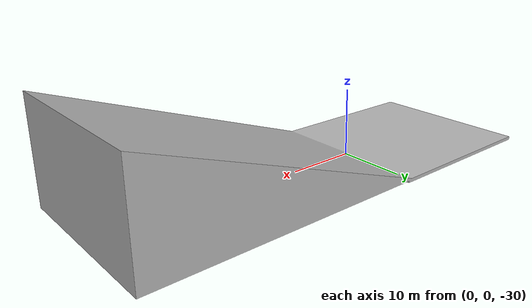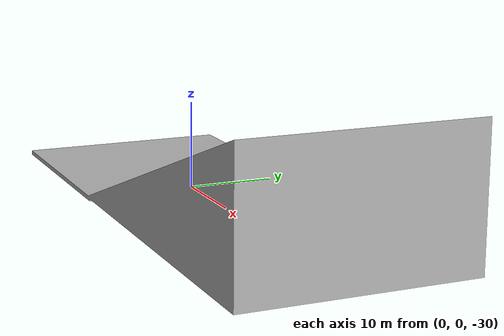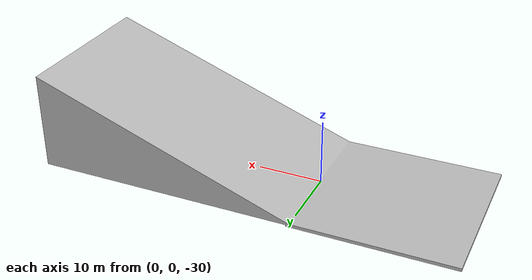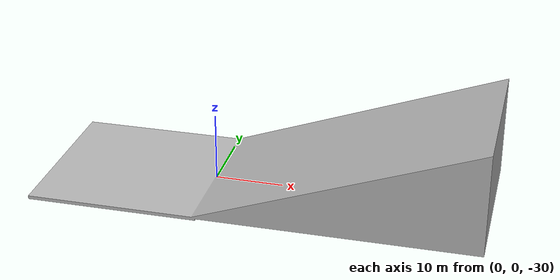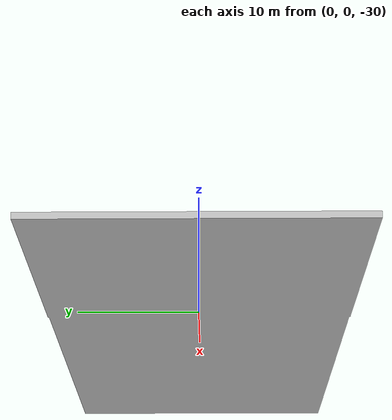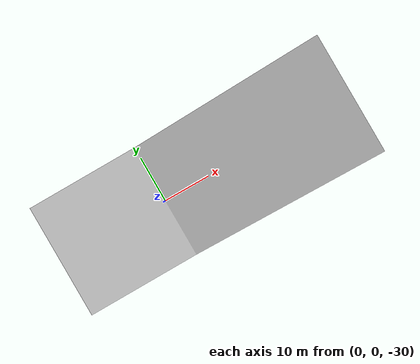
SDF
<sdf version="1.5">
  <model name="floor">
    <link name="floor">
      <static>false</static>
      <collision name="floor">
        <pose>-12 0 -30 0 0 0</pose>
        <geometry>
          <mesh>
            <uri>model://floor/meshes/wedge_plane.dae</uri>
            <scale>0.5 0.5 0.5</scale>
          </mesh>
        </geometry>

      </collision>

      <visual name="floor">
        <pose>-12 0 -30 0 0 0</pose>
        <cast_shadows>false</cast_shadows>
        <geometry>
          <mesh>
            <uri>model://floor/meshes/wedge_plane.dae</uri>
            <scale>0.5 0.5 0.5</scale>

          </mesh>
        </geometry>

      </visual>

       <kinematic>1</kinematic>
     </link>
  </model>
</sdf>
